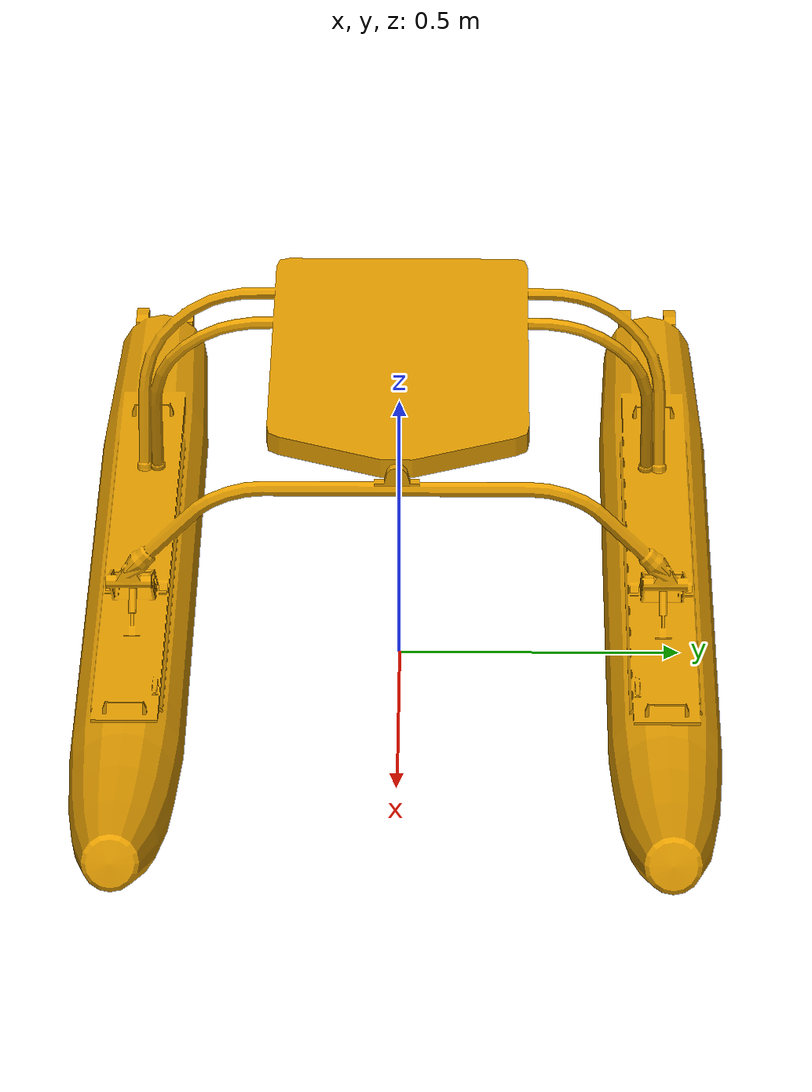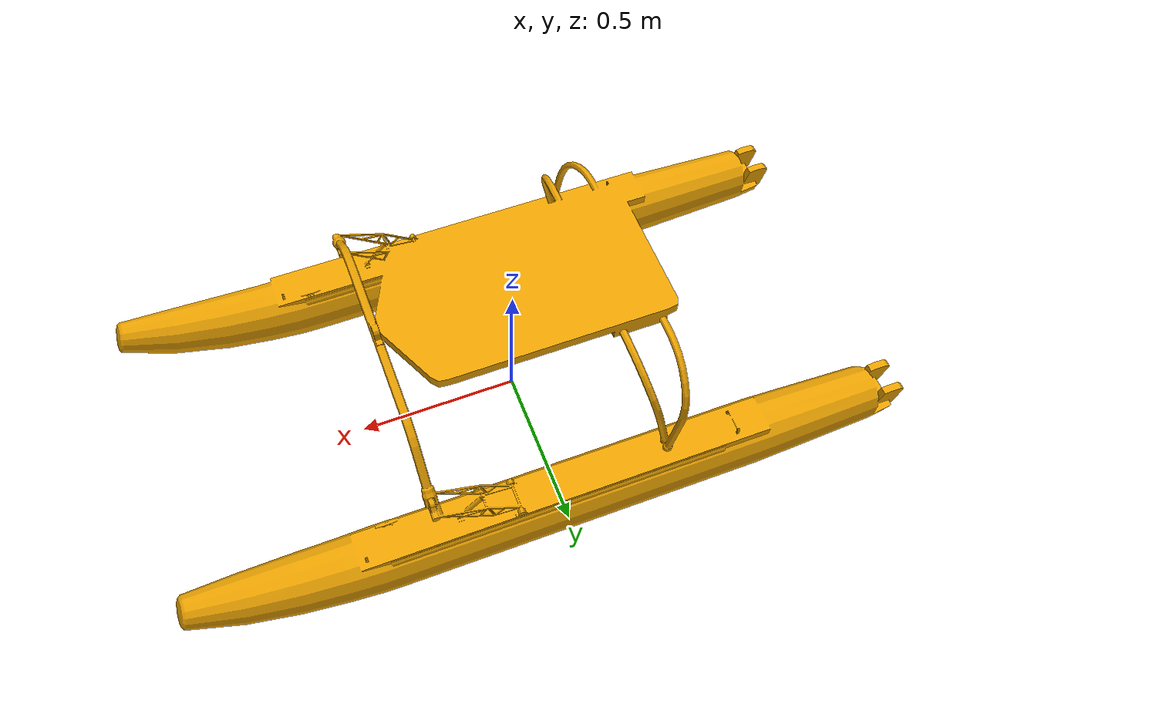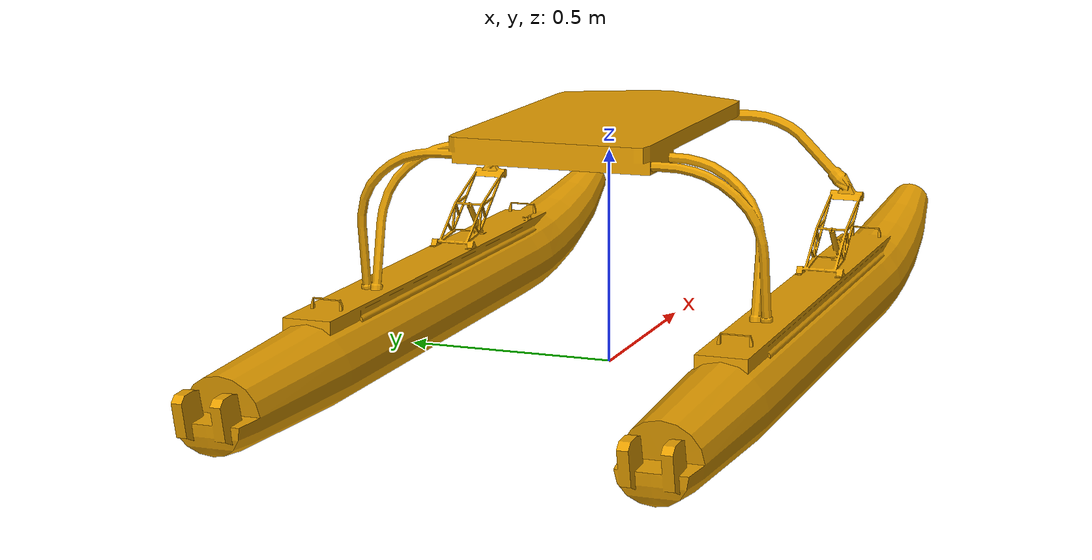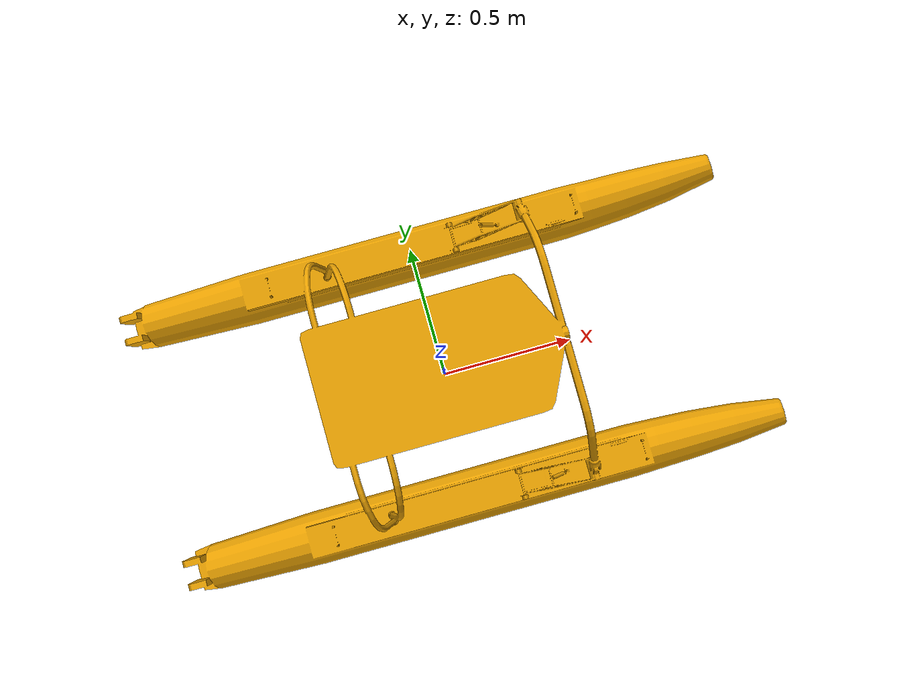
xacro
<?xml version="1.0"?>
<robot name="wamv" xmlns:xacro="http://ros.org/wiki/xacro">

    <!--This operates in std frame-->
    <link name="base_link">
        <visual>
            <origin xyz="0.0 -0 -0" rpy="0.0 0.0 0"/>
            <geometry>
                <mesh filename="package://wamv_description/mesh/wamv_base.obj" scale="0.0045 0.0045 0.0045"/>
            </geometry>
        </visual>
    </link>

    <link name="cg_link"/>
    <joint name="cg_joint" type="fixed">
        <origin xyz="0.0 0.0 0.0" rpy="3.1415926 0.0 0.0"/>
        <parent link="base_link"/>
        <child link="cg_link"/>
    </joint>

    <link name="multibeam"/>
    <joint name="multibeam_joint" type="fixed">
        <origin xyz="0.0 0.0 -0.5" rpy="-1.57 .785 -1.57"/>
        <parent link="base_link"/>
        <child link="multibeam"/>
    </joint>

    <link name="laserscanner_1"/>
    <joint name="laserscanner_1_joint" type="fixed">
        <origin xyz="0.0 0.0 0.5" rpy="0 -0.0 4.712389"/>
        <parent link="base_link"/>
        <child link="laserscanner_1"/>
    </joint>

    <link name="laserscanner_3"/>
    <joint name="laserscanner_3_joint" type="fixed">
        <origin xyz="0.0 0.0 0.5" rpy="0 -0.08726646 4.712389"/>
        <parent link="base_link"/>
        <child link="laserscanner_3"/>
    </joint>

    <link name="laserscanner_5"/>
    <joint name="laserscanner_5_joint" type="fixed">
        <origin xyz="0.0 0.0 0.5" rpy="0 -0.1745329 4.712389"/>
        <parent link="base_link"/>
        <child link="laserscanner_5"/>
    </joint>

    <link name="laserscanner_7"/>
    <joint name="laserscanner_7_joint" type="fixed">
        <origin xyz="0.0 0.0 0.5" rpy="0 -0.2617994 4.712389"/>
        <parent link="base_link"/>
        <child link="laserscanner_7"/>
    </joint>

    <link name="laserscanner_9"/>
    <joint name="laserscanner_9_joint" type="fixed">
        <origin xyz="0.0 0.0 0.5" rpy="0 -0.3490659 4.712389"/>
        <parent link="base_link"/>
        <child link="laserscanner_9"/>
    </joint>

    <link name="vlp16"/>
    <joint name="vlp16_joint" type="fixed">
        <origin xyz="0.00 0.00 1.0" rpy="3.14159 0.00 0.00"/>
        <parent link="base_link"/>
        <child link="vlp16"/>
    </joint>

    <link name="imu"/>
    <joint name="imu_joint" type="fixed">
        <origin xyz="0.0 0.0 0.0" rpy="0.0 0.0 0.0"/>
        <parent link="base_link"/>
        <child link="imu"/>
    </joint>

    <link name="imu_sf"/>
    <joint name="imu_sf_joint" type="fixed">
        <origin xyz="0.0 0.0 0.0" rpy="0.0 0.0 0.0"/>
        <parent link="base_link"/>
        <child link="imu_sf"/>
    </joint>

    <link name="gps"/>
    <joint name="gps_joint" type="fixed">
        <origin xyz="0.0 0.0 0.3" rpy="3.1415926 0.0 0.0"/>
        <parent link="base_link"/>
        <child link="gps"/>
    </joint>

    <link name="dvl_sf"/>
    <joint name="dvl_sf_joint" type="fixed">
        <origin xyz="-0.65 0.0 0.1" rpy="0.0 0.0 0.0"/>
        <parent link="base_link"/>
        <child link="dvl_sf"/>
    </joint>

    <link name="usbl"/>
    <joint name="usbl_joint" type="fixed">
        <origin xyz="-0.1 0.0 -0.5" rpy="0.0 3.1415926 3.1415926"/>
        <parent link="base_link"/>
        <child link="usbl"/>
    </joint>

    <link name="HydromeaUVX"/>
    <joint name="HydromeaUVX_joint" type="fixed">
        <origin xyz="0.0 0.0 -0.5" rpy="1.5708 2.0944 1.5708"/>
        <parent link="base_link"/>
        <child link="HydromeaUVX"/>
    </joint>

    <link name="thruster_starboard_link"/>
    <joint name="thruster_starboard_joint" type="fixed">
        <origin rpy="3.14 0 0" xyz="-1 -.45 -.2"/>
        <parent link="base_link"/>
        <child link="thruster_starboard_link"/>
    </joint>

    <link name="thruster_port_link"/>
    <joint name="thruster_port_joint" type="fixed">
        <origin rpy="3.14 0 0" xyz="-1 .45 -.2"/>
        <parent link="base_link"/>
        <child link="thruster_port_link"/>
    </joint>

</robot>
